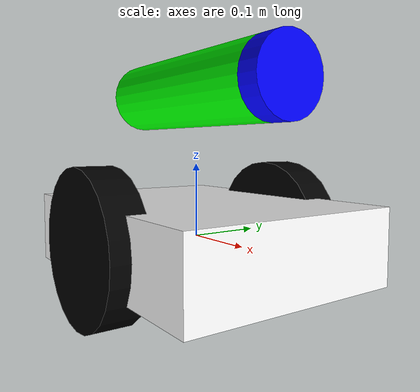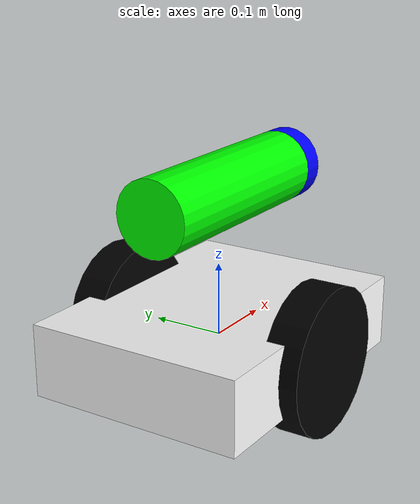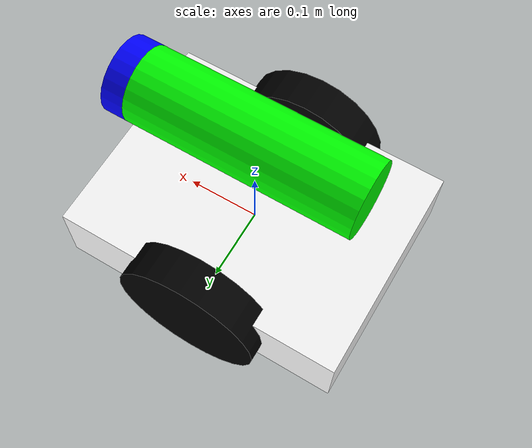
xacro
<?xml version="1.0"?>
<robot name="pointer_car"
  xmlns:xacro="http://ros.org/wiki/xacro">

  <!-- PROPERTIES -->
  <xacro:property name="wheel_radius" value="0.1" />
  <xacro:property name="wheel_thickness" value="0.05" />

  <xacro:property name="car_height" value="0.1" />
  <xacro:property name="car_length" value="0.4" />
  <xacro:property name="car_width" value="0.3" />

  <xacro:property name="pointer_heigth" value="0.2" />
  <xacro:property name="pointer_length" value="0.3" />
  <xacro:property name="pointer_radius" value="0.05" />

  <xacro:property name="wheel_reduction" value="1" />
  <xacro:property name="pointer_reduction" value="1" />

  <!-- INCLUDE HELPER SNIPPETS -->
  <xacro:include filename="$(find ros_control_tests)/urdf/snippets.xacro"/>

  <!-- BASE_LINK -->
  <link name="base_link">
    <visual>
      <geometry>
        <box size="${car_length} ${car_width} ${car_height}"/>
      </geometry>
      <material name="white">
        <color rgba="1 1 1 1"/>
      </material>
    </visual>
  </link>

  <!-- WHEELS -->
  <xacro:wheel_macro prefix="left" position="${car_width/2}"/>
  <xacro:wheel_macro prefix="right" position="-${car_width/2}"/>

  <!-- POINTER -->
  <link name="pointer_link">
    <visual>
      <geometry>
        <cylinder length="${pointer_length}" radius="${pointer_radius}"/>
      </geometry>
      <material name="green">
        <color rgba="0 1 0 1"/>
      </material>
    </visual>
  </link>

  <link name="pointer_tip_link">
    <visual>
      <geometry>
        <cylinder length="${0.1*pointer_length}" radius="${pointer_radius}"/>
      </geometry>
      <material name="blue">
        <color rgba="0 0 1 1"/>
      </material>
    </visual>
  </link>

  <joint name="pointer_joint" type="continuous">
    <parent link="base_link"/>
    <child link="pointer_link"/>
    <origin xyz="0 0 ${pointer_heigth}" rpy="0 ${pi/2} 0"/>
    <axis xyz="1 0 0"/>
  </joint>
  <xacro:transmission_macro joint="pointer_joint" reduction="${pointer_reduction}"/>

  <joint name="pointer_tip_joint" type="fixed">
    <parent link="pointer_link"/>
    <child link="pointer_tip_link"/>
    <origin xyz="0 0 ${0.55*pointer_length}"/>
  </joint>

</robot>

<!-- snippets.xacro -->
<robot xmlns:xacro="http://www.ros.org/wiki/xacro">

  <!-- TRANSMISSION MACRO -->
  <xacro:macro name="transmission_macro" params="joint reduction:=1">
    <transmission name="${joint}_transmission" type="SimpleTransmission">
      <type>transmission_interface/SimpleTransmission</type>
      <actuator name="${joint}_actuator">
        <mechanicalReduction>${reduction}</mechanicalReduction>
      </actuator>
      <joint name="${joint}">
        <hardwareInterface>hardware_interface/PositionJointInterface</hardwareInterface>
        <hardwareInterface>hardware_interface/VelocityJointInterface</hardwareInterface>
        <hardwareInterface>hardware_interface/EffortJointInterface</hardwareInterface>
      </joint>
    </transmission>
  </xacro:macro>

  <!-- WHEEL MACRO -->
  <xacro:macro name="wheel_macro" params="prefix position">
    <link name="${prefix}_wheel_link">
      <visual>
        <geometry>
          <cylinder radius="${wheel_radius}" length="${wheel_thickness}"/>
        </geometry>
        <material name="black">
          <color rgba="0 0 0 1"/>
        </material>
      </visual>
      <collision>
        <geometry>
          <cylinder radius="${wheel_radius}" length="${wheel_thickness}"/>
        </geometry>
      </collision>
    </link>

    <joint name="${prefix}_wheel_joint" type="continuous">
      <parent link="base_link"/>
      <child link="${prefix}_wheel_link"/>
      <origin xyz="0 ${position} 0" rpy="${-pi/2} 0 0"/>
      <axis xyz="0 0 1"/>
    </joint>

    <xacro:transmission_macro joint="${prefix}_wheel_joint" reduction="${wheel_reduction}"/>

  </xacro:macro>

</robot>
